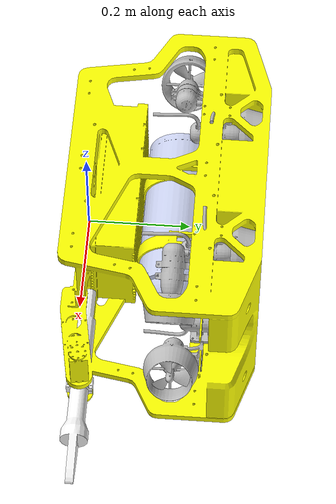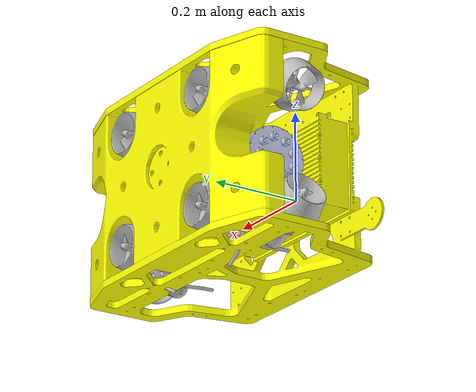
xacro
<?xml version="1.0"?>
<robot xmlns:xacro="http://www.ros.org/wiki/xacro" name="underwater_robot">

  <!-- Define xacro parameters -->
  <xacro:arg name="namespace" default="underwater_robot"/>
  <xacro:arg name="debug" default="0"/>
  <xacro:arg name="inertial_reference_frame" default="world"/>

  <!-- Include original URDF content -->
  <xacro:include filename="$(find underwater_robot)/urdf/underwater_robot.urdf" />

  <!-- Interface baseline only: the original CAD mass and volume are inconsistent.
       Do not use for physical validation until the CAD mass and displacement are verified. -->
  <gazebo>
    <plugin name="uuv_plugin" filename="libuuv_underwater_object_ros_plugin.so">
      <fluid_density>1028.0</fluid_density>
      <link name="base_link">
        <neutrally_buoyant>false</neutrally_buoyant>
        <volume>0.021</volume>
        <center_of_buoyancy>0 0 0.1</center_of_buoyancy>
        <hydrodynamic_model>
          <type>fossen</type>
          <linear_damping>-70 -70 -70 -50 -50 -50</linear_damping>
          <linear_damping_forward_speed>0 0 0 0 0 0</linear_damping_forward_speed>
          <quadratic_damping>-100 -100 -100 -80 -80 -80</quadratic_damping>
        </hydrodynamic_model>
      </link>
    </plugin>
    <plugin name="pose_gt_plugin" filename="libuuv_gazebo_ros_pose_gt_plugin.so">
      <robot_namespace>$(arg namespace)</robot_namespace>
      <link_name>base_link</link_name>
      <sensor_topic>pose_gt</sensor_topic>
      <static_reference_frame>world</static_reference_frame>
      <update_rate>20</update_rate>
      <noise_sigma>0.0</noise_sigma>
      <noise_amplitude>0.0</noise_amplitude>
      <enable_gazebo_messages>false</enable_gazebo_messages>
      <publish_ned_odom>false</publish_ned_odom>
    </plugin>
  </gazebo>

  <!-- Geometry from CAD J1; auxiliary mass and inertia are provisional. -->
  <link name="thruster_0_link">
    <inertial><mass value="0.01"/><inertia ixx="0.000001" ixy="0" ixz="0" iyy="0.000001" iyz="0" izz="0.000001"/></inertial>
  </link>
  <joint name="thruster_0_joint" type="continuous">
    <origin xyz="0.288260052347553 0.179999999999991 -0.10968904997502" rpy="0 0 0"/><parent link="base_link"/><child link="thruster_0_link"/><axis xyz="0.866025403784441 0.0 0.499999999999996"/>
  </joint>
  <gazebo>
    <plugin name="thruster_0" filename="libuuv_thruster_ros_plugin.so">
      <linkName>thruster_0_link</linkName><jointName>thruster_0_joint</jointName><thrusterID>0</thrusterID>
      <dynamics><type>FirstOrder</type><timeConstant>0.2</timeConstant></dynamics>
      <conversion><type>Basic</type><rotorConstant>0.001</rotorConstant></conversion>
    </plugin>
  </gazebo>
  <!-- Geometry from CAD J2; auxiliary mass and inertia are provisional. -->
  <link name="thruster_1_link">
    <inertial><mass value="0.01"/><inertia ixx="0.000001" ixy="0" ixz="0" iyy="0.000001" iyz="0" izz="0.000001"/></inertial>
  </link>
  <joint name="thruster_1_joint" type="continuous">
    <origin xyz="0.288260052347554 0.17999999999999 0.10968904997502" rpy="0 0 0"/><parent link="base_link"/><child link="thruster_1_link"/><axis xyz="0.8660254037844398 0.0 -0.4999999999999979"/>
  </joint>
  <gazebo>
    <plugin name="thruster_1" filename="libuuv_thruster_ros_plugin.so">
      <linkName>thruster_1_link</linkName><jointName>thruster_1_joint</jointName><thrusterID>1</thrusterID>
      <dynamics><type>FirstOrder</type><timeConstant>0.2</timeConstant></dynamics>
      <conversion><type>Basic</type><rotorConstant>0.001</rotorConstant></conversion>
    </plugin>
  </gazebo>
  <!-- Geometry from CAD J5; auxiliary mass and inertia are provisional. -->
  <link name="thruster_2_link">
    <inertial><mass value="0.01"/><inertia ixx="0.000001" ixy="0" ixz="0" iyy="0.000001" iyz="0" izz="0.000001"/></inertial>
  </link>
  <joint name="thruster_2_joint" type="continuous">
    <origin xyz="-0.140007714422317 0.335591649969219 -0.125" rpy="0 0 0"/><parent link="base_link"/><child link="thruster_2_link"/><axis xyz="0.0 1.0 0.0"/>
  </joint>
  <gazebo>
    <plugin name="thruster_2" filename="libuuv_thruster_ros_plugin.so">
      <linkName>thruster_2_link</linkName><jointName>thruster_2_joint</jointName><thrusterID>2</thrusterID>
      <dynamics><type>FirstOrder</type><timeConstant>0.2</timeConstant></dynamics>
      <conversion><type>Basic</type><rotorConstant>0.001</rotorConstant></conversion>
    </plugin>
  </gazebo>
  <!-- Geometry from CAD J6; auxiliary mass and inertia are provisional. -->
  <link name="thruster_3_link">
    <inertial><mass value="0.01"/><inertia ixx="0.000001" ixy="0" ixz="0" iyy="0.000001" iyz="0" izz="0.000001"/></inertial>
  </link>
  <joint name="thruster_3_joint" type="continuous">
    <origin xyz="-0.140007714422317 0.335591649969219 0.125" rpy="0 0 0"/><parent link="base_link"/><child link="thruster_3_link"/><axis xyz="0.0 1.0 0.0"/>
  </joint>
  <gazebo>
    <plugin name="thruster_3" filename="libuuv_thruster_ros_plugin.so">
      <linkName>thruster_3_link</linkName><jointName>thruster_3_joint</jointName><thrusterID>3</thrusterID>
      <dynamics><type>FirstOrder</type><timeConstant>0.2</timeConstant></dynamics>
      <conversion><type>Basic</type><rotorConstant>0.001</rotorConstant></conversion>
    </plugin>
  </gazebo>
  <!-- Geometry from CAD J7; auxiliary mass and inertia are provisional. -->
  <link name="thruster_4_link">
    <inertial><mass value="0.01"/><inertia ixx="0.000001" ixy="0" ixz="0" iyy="0.000001" iyz="0" izz="0.000001"/></inertial>
  </link>
  <joint name="thruster_4_joint" type="continuous">
    <origin xyz="-0.288275481192185 0.179999999999994 0.109689049975018" rpy="0 0 0"/><parent link="base_link"/><child link="thruster_4_link"/><axis xyz="-0.8660254037844398 0.0 -0.4999999999999979"/>
  </joint>
  <gazebo>
    <plugin name="thruster_4" filename="libuuv_thruster_ros_plugin.so">
      <linkName>thruster_4_link</linkName><jointName>thruster_4_joint</jointName><thrusterID>4</thrusterID>
      <dynamics><type>FirstOrder</type><timeConstant>0.2</timeConstant></dynamics>
      <conversion><type>Basic</type><rotorConstant>0.001</rotorConstant></conversion>
    </plugin>
  </gazebo>
  <!-- Geometry from CAD J8; auxiliary mass and inertia are provisional. -->
  <link name="thruster_5_link">
    <inertial><mass value="0.01"/><inertia ixx="0.000001" ixy="0" ixz="0" iyy="0.000001" iyz="0" izz="0.000001"/></inertial>
  </link>
  <joint name="thruster_5_joint" type="continuous">
    <origin xyz="-0.28828 0.18 -0.10969" rpy="0 0 0"/><parent link="base_link"/><child link="thruster_5_link"/><axis xyz="-0.8660265528314682 0.0 0.49999800978688286"/>
  </joint>
  <gazebo>
    <plugin name="thruster_5" filename="libuuv_thruster_ros_plugin.so">
      <linkName>thruster_5_link</linkName><jointName>thruster_5_joint</jointName><thrusterID>5</thrusterID>
      <dynamics><type>FirstOrder</type><timeConstant>0.2</timeConstant></dynamics>
      <conversion><type>Basic</type><rotorConstant>0.001</rotorConstant></conversion>
    </plugin>
  </gazebo>
  <gazebo>
    <plugin name="joint_states" filename="libgazebo_ros_joint_state_publisher.so">
      <robotNamespace>$(arg namespace)</robotNamespace><updateRate>50</updateRate>
      <jointName>J1,J2,J5,J6,J7,J8,arm1,thruster_0_joint,thruster_1_joint,thruster_2_joint,thruster_3_joint,thruster_4_joint,thruster_5_joint</jointName>
    </plugin>
  </gazebo>
</robot>

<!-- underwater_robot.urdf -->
<robot
  name="underwater_robot">
  <link
    name="base_link">
    <inertial>
      <origin
        xyz="-0.00388812346992118 0.214797507718185 0.000476870940854357"
        rpy="0 0 0" />
      <mass
        value="21.9611699884002" />
      <inertia
        ixx="0.23895137440233"
        ixy="-6.02120687701648E-05"
        ixz="6.67278401351575E-08"
        iyy="0.743447355689122"
        iyz="1.63793544263822E-06"
        izz="0.621848783014161" />
    </inertial>
    <visual>
      <origin
        xyz="0 0 0"
        rpy="0 0 0" />
      <geometry>
        <mesh
          filename="package://underwater_robot/meshes/base_link.STL" />
      </geometry>
      <material
        name="">
        <color
          rgba="0.988235294117647 1 0 1" />
      </material>
    </visual>
    <collision>
      <origin
        xyz="0 0 0"
        rpy="0 0 0" />
      <geometry>
        <mesh
          filename="package://underwater_robot/meshes/base_link.STL" />
      </geometry>
    </collision>
  </link>
  <link
    name="Link1">
    <inertial>
      <origin
        xyz="-0.284442084254638 0.0315351600726216 0.110185193232208"
        rpy="0 0 0" />
      <mass
        value="26.1757475044251" />
      <inertia
        ixx="0.694456523856631"
        ixy="0.0239708286389597"
        ixz="-0.00454179397071017"
        iyy="1.11839552637036"
        iyz="0.00257399094431449"
        izz="1.14010350472946" />
    </inertial>
    <visual>
      <origin
        xyz="0 0 0"
        rpy="0 0 0" />
      <geometry>
        <mesh
          filename="package://underwater_robot/meshes/Link1.STL" />
      </geometry>
      <material
        name="">
        <color
          rgba="0.752941176470588 0.752941176470588 0.752941176470588 1" />
      </material>
    </visual>
    <collision>
      <origin
        xyz="0 0 0"
        rpy="0 0 0" />
      <geometry>
        <mesh
          filename="package://underwater_robot/meshes/Link1.STL" />
      </geometry>
    </collision>
  </link>
  <joint
    name="J1"
    type="continuous">
    <origin
      xyz="0.288260052347553 0.179999999999991 -0.10968904997502"
      rpy="0 0 0" />
    <parent
      link="base_link" />
    <child
      link="Link1" />
    <axis
      xyz="0.866025403784441 0 0.499999999999996" />
  </joint>
  <link
    name="Link2">
    <inertial>
      <origin
        xyz="-0.284442084254639 0.0315351600726221 -0.109192906717831"
        rpy="0 0 0" />
      <mass
        value="26.1757475044251" />
      <inertia
        ixx="0.694456523856631"
        ixy="0.0239708286389598"
        ixz="-0.00454179397071014"
        iyy="1.11839552637036"
        iyz="0.00257399094431438"
        izz="1.14010350472946" />
    </inertial>
    <visual>
      <origin
        xyz="0 0 0"
        rpy="0 0 0" />
      <geometry>
        <mesh
          filename="package://underwater_robot/meshes/Link2.STL" />
      </geometry>
      <material
        name="">
        <color
          rgba="0.752941176470588 0.752941176470588 0.752941176470588 1" />
      </material>
    </visual>
    <collision>
      <origin
        xyz="0 0 0"
        rpy="0 0 0" />
      <geometry>
        <mesh
          filename="package://underwater_robot/meshes/Link2.STL" />
      </geometry>
    </collision>
  </link>
  <joint
    name="J2"
    type="continuous">
    <origin
      xyz="0.288260052347554 0.17999999999999 0.10968904997502"
      rpy="0 0 0" />
    <parent
      link="base_link" />
    <child
      link="Link2" />
    <axis
      xyz="0.86602540378444 0 -0.499999999999998" />
  </joint>
  <link
    name="Link3">
    <inertial>
      <origin
        xyz="-0.13617431748477 -0.124056489896612 0.125496143257188"
        rpy="0 0 0" />
      <mass
        value="26.1757475044251" />
      <inertia
        ixx="0.694456523856631"
        ixy="0.0239708286389597"
        ixz="-0.00454179397071017"
        iyy="1.11839552637036"
        iyz="0.0025739909443145"
        izz="1.14010350472946" />
    </inertial>
    <visual>
      <origin
        xyz="0 0 0"
        rpy="0 0 0" />
      <geometry>
        <mesh
          filename="package://underwater_robot/meshes/Link3.STL" />
      </geometry>
      <material
        name="">
        <color
          rgba="0.752941176470588 0.752941176470588 0.752941176470588 1" />
      </material>
    </visual>
    <collision>
      <origin
        xyz="0 0 0"
        rpy="0 0 0" />
      <geometry>
        <mesh
          filename="package://underwater_robot/meshes/Link3.STL" />
      </geometry>
    </collision>
  </link>
  <joint
    name="J3"
    type="fixed">
    <origin
      xyz="0.139992285577685 0.335591649969225 -0.125"
      rpy="0 0 0" />
    <parent
      link="base_link" />
    <child
      link="Link3" />
    <axis
      xyz="0 0 0" />
  </joint>
  <link
    name="Link4">
    <inertial>
      <origin
        xyz="-0.13617431748477 -0.124056489896612 -0.124503856742812"
        rpy="0 0 0" />
      <mass
        value="26.1757475044251" />
      <inertia
        ixx="0.694456523856631"
        ixy="0.0239708286389597"
        ixz="-0.00454179397071016"
        iyy="1.11839552637036"
        iyz="0.00257399094431448"
        izz="1.14010350472946" />
    </inertial>
    <visual>
      <origin
        xyz="0 0 0"
        rpy="0 0 0" />
      <geometry>
        <mesh
          filename="package://underwater_robot/meshes/Link4.STL" />
      </geometry>
      <material
        name="">
        <color
          rgba="0.752941176470588 0.752941176470588 0.752941176470588 1" />
      </material>
    </visual>
    <collision>
      <origin
        xyz="0 0 0"
        rpy="0 0 0" />
      <geometry>
        <mesh
          filename="package://underwater_robot/meshes/Link4.STL" />
      </geometry>
    </collision>
  </link>
  <joint
    name="J4"
    type="fixed">
    <origin
      xyz="0.139992285577685 0.335591649969225 0.125"
      rpy="0 0 0" />
    <parent
      link="base_link" />
    <child
      link="Link4" />
    <axis
      xyz="0 0 0" />
  </joint>
  <link
    name="Link5">
    <inertial>
      <origin
        xyz="0.143825682515232 -0.124056489896607 0.125496143257189"
        rpy="0 0 0" />
      <mass
        value="26.1757475044251" />
      <inertia
        ixx="0.694456523856631"
        ixy="0.0239708286389596"
        ixz="-0.00454179397071016"
        iyy="1.11839552637036"
        iyz="0.00257399094431449"
        izz="1.14010350472946" />
    </inertial>
    <visual>
      <origin
        xyz="0 0 0"
        rpy="0 0 0" />
      <geometry>
        <mesh
          filename="package://underwater_robot/meshes/Link5.STL" />
      </geometry>
      <material
        name="">
        <color
          rgba="0.752941176470588 0.752941176470588 0.752941176470588 1" />
      </material>
    </visual>
    <collision>
      <origin
        xyz="0 0 0"
        rpy="0 0 0" />
      <geometry>
        <mesh
          filename="package://underwater_robot/meshes/Link5.STL" />
      </geometry>
    </collision>
  </link>
  <joint
    name="J5"
    type="continuous">
    <origin
      xyz="-0.140007714422317 0.335591649969219 -0.125"
      rpy="0 0 0" />
    <parent
      link="base_link" />
    <child
      link="Link5" />
    <axis
      xyz="0 1 0" />
  </joint>
  <link
    name="Link6">
    <inertial>
      <origin
        xyz="0.143825682515232 -0.124056489896607 -0.124503856742812"
        rpy="0 0 0" />
      <mass
        value="26.1757475044251" />
      <inertia
        ixx="0.694456523856631"
        ixy="0.0239708286389597"
        ixz="-0.00454179397071016"
        iyy="1.11839552637036"
        iyz="0.00257399094431447"
        izz="1.14010350472946" />
    </inertial>
    <visual>
      <origin
        xyz="0 0 0"
        rpy="0 0 0" />
      <geometry>
        <mesh
          filename="package://underwater_robot/meshes/Link6.STL" />
      </geometry>
      <material
        name="">
        <color
          rgba="0.752941176470588 0.752941176470588 0.752941176470588 1" />
      </material>
    </visual>
    <collision>
      <origin
        xyz="0 0 0"
        rpy="0 0 0" />
      <geometry>
        <mesh
          filename="package://underwater_robot/meshes/Link6.STL" />
      </geometry>
    </collision>
  </link>
  <joint
    name="J6"
    type="continuous">
    <origin
      xyz="-0.140007714422317 0.335591649969219 0.125"
      rpy="0 0 0" />
    <parent
      link="base_link" />
    <child
      link="Link6" />
    <axis
      xyz="0 1 0" />
  </joint>
  <link
    name="Link7">
    <inertial>
      <origin
        xyz="0.292093449285101 0.0315351600726186 -0.109192906717829"
        rpy="0 0 0" />
      <mass
        value="26.1757475044251" />
      <inertia
        ixx="0.69445652385663"
        ixy="0.0239708286389596"
        ixz="-0.00454179397071014"
        iyy="1.11839552637036"
        iyz="0.00257399094431444"
        izz="1.14010350472946" />
    </inertial>
    <visual>
      <origin
        xyz="0 0 0"
        rpy="0 0 0" />
      <geometry>
        <mesh
          filename="package://underwater_robot/meshes/Link7.STL" />
      </geometry>
      <material
        name="">
        <color
          rgba="0.752941176470588 0.752941176470588 0.752941176470588 1" />
      </material>
    </visual>
    <collision>
      <origin
        xyz="0 0 0"
        rpy="0 0 0" />
      <geometry>
        <mesh
          filename="package://underwater_robot/meshes/Link7.STL" />
      </geometry>
    </collision>
  </link>
  <joint
    name="J7"
    type="continuous">
    <origin
      xyz="-0.288275481192185 0.179999999999994 0.109689049975018"
      rpy="0 0 0" />
    <parent
      link="base_link" />
    <child
      link="Link7" />
    <axis
      xyz="-0.86602540378444 0 -0.499999999999998" />
  </joint>
  <link
    name="Link8">
    <inertial>
      <origin
        xyz="0.2920934492851 0.0315351600726188 0.110185193232206"
        rpy="0 0 0" />
      <mass
        value="26.1757475044251" />
      <inertia
        ixx="0.694456523856631"
        ixy="0.0239708286389598"
        ixz="-0.00454179397071014"
        iyy="1.11839552637036"
        iyz="0.00257399094431444"
        izz="1.14010350472946" />
    </inertial>
    <visual>
      <origin
        xyz="0 0 0"
        rpy="0 0 0" />
      <geometry>
        <mesh
          filename="package://underwater_robot/meshes/Link8.STL" />
      </geometry>
      <material
        name="">
        <color
          rgba="0.752941176470588 0.752941176470588 0.752941176470588 1" />
      </material>
    </visual>
    <collision>
      <origin
        xyz="0 0 0"
        rpy="0 0 0" />
      <geometry>
        <mesh
          filename="package://underwater_robot/meshes/Link8.STL" />
      </geometry>
    </collision>
  </link>
  <joint
    name="J8"
    type="continuous">
    <origin
      xyz="-0.28828 0.18 -0.10969"
      rpy="0 0 0" />
    <parent
      link="base_link" />
    <child
      link="Link8" />
    <axis
      xyz="-0.86603 0 0.5" />
  </joint>
  <link
    name="Link9">
    <inertial>
      <origin
        xyz="-0.197367290138972 3.1641356201817E-15 -1.13797860024079E-15"
        rpy="0 0 0" />
      <mass
        value="1.03393910252923" />
      <inertia
        ixx="0.00354213590504132"
        ixy="5.34392119916816E-18"
        ixz="-4.25653721872329E-19"
        iyy="0.00621309491541952"
        iyz="-1.30102257820008E-18"
        izz="0.00621309491541951" />
    </inertial>
    <visual>
      <origin
        xyz="0 0 0"
        rpy="0 0 0" />
      <geometry>
        <mesh
          filename="package://underwater_robot/meshes/Link9.STL" />
      </geometry>
      <material
        name="">
        <color
          rgba="0.792156862745098 0.819607843137255 0.933333333333333 1" />
      </material>
    </visual>
    <collision>
      <origin
        xyz="0 0 0"
        rpy="0 0 0" />
      <geometry>
        <mesh
          filename="package://underwater_robot/meshes/Link9.STL" />
      </geometry>
    </collision>
  </link>
  <joint
    name="camera"
    type="fixed">
    <origin
      xyz="0.17999 0.1735 0"
      rpy="0 0 0" />
    <parent
      link="base_link" />
    <child
      link="Link9" />
    <axis
      xyz="0 0 0" />
  </joint>
  <link
    name="Link10">
    <inertial>
      <origin
        xyz="0.0068200882299887 -2.70591645078477E-05 0.0299493911134847"
        rpy="0 0 0" />
      <mass
        value="0.387766393452322" />
      <inertia
        ixx="7.20995315346367E-05"
        ixy="4.79320615146667E-06"
        ixz="1.66510519905277E-09"
        iyy="0.00406238242640918"
        iyz="9.71393809401032E-11"
        izz="0.00406025716694692" />
    </inertial>
    <visual>
      <origin
        xyz="0 0 0"
        rpy="0 0 0" />
      <geometry>
        <mesh
          filename="package://underwater_robot/meshes/Link10.STL" />
      </geometry>
      <material
        name="">
        <color
          rgba="1 1 1 1" />
      </material>
    </visual>
    <collision>
      <origin
        xyz="0 0 0"
        rpy="0 0 0" />
      <geometry>
        <mesh
          filename="package://underwater_robot/meshes/Link10.STL" />
      </geometry>
    </collision>
  </link>
  <joint
    name="arm1"
    type="revolute">
    <origin
      xyz="0.374251802975354 0.0161421530640257 -0.03"
      rpy="0 0 0" />
    <parent
      link="base_link" />
    <child
      link="Link10" />
    <axis
      xyz="0 0 1" />
    <limit
      lower="0"
      upper="0"
      effort="0"
      velocity="0" />
  </joint>
</robot>
